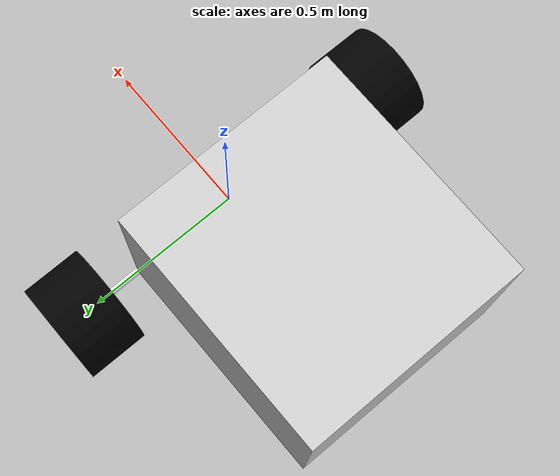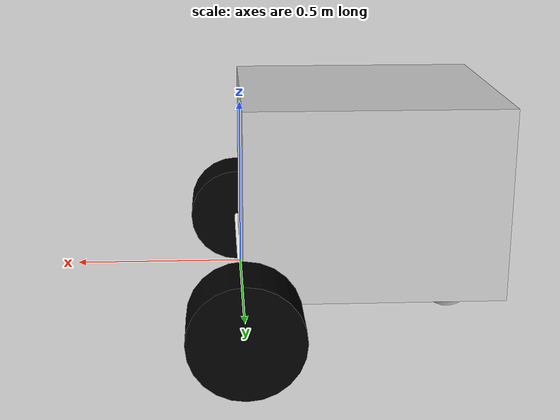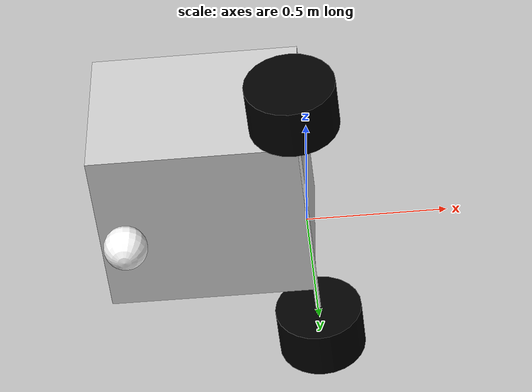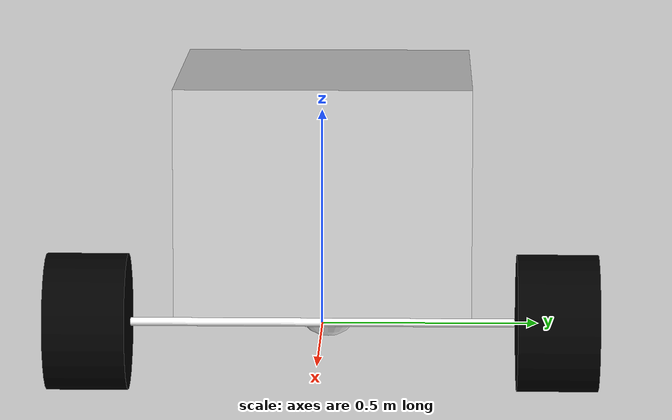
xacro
<?xml version="1.0"?>
<robot xmlns:xacro="http://www.ros.org/wiki/xacro" >

    <xacro:include filename="inertial_macros.xacro"/>

    <xacro:property name="chassis_length" value="0.750"/>
    <xacro:property name="chassis_width" value="0.696"/>
    <xacro:property name="chassis_height" value="0.556"/>
    <xacro:property name="chassis_mass" value="3.0"/>
    <xacro:property name="wheel_radius" value="0.16"/>
    <xacro:property name="wheel_thickness" value="0.19"/>
    <xacro:property name="wheel_mass" value="1.0"/>
    <xacro:property name="wheel_offset_x" value="0.226"/>
    <xacro:property name="wheel_offset_y" value="${chassis_width/2 + wheel_thickness + 0.01}"/>
    <xacro:property name="wheel_offset_z" value="0.01"/>
    <xacro:property name="caster_wheel_radius" value="0.01"/>
    <xacro:property name="caster_wheel_mass" value="0.2"/>
    <xacro:property name="caster_wheel_offset_x" value="0.075"/>
    <xacro:property name="caster_wheel_offset_z" value="${wheel_offset_z - wheel_radius + caster_wheel_radius}"/>

    <material name="white">
        <color rgba="1 1 1 1" />
    </material>

    <material name="orange">
        <color rgba="1 0.3 0.1 1"/>
    </material>

    <material name="blue">
        <color rgba="0.2 0.2 1 1"/>
    </material>

    <material name="black">
        <color rgba="0 0 0 1"/>
    </material>

    <material name="red">
        <color rgba="1 0 0 1"/>
    </material>

    <material name="grey">
        <color rgba="0.5 0.5 0.5 1.0"/>
    </material>

     <material name="lightgrey">
         <color rgba="0.8 0.8 0.8 1.0"/>
    </material>

    <material name="greynavy">
        <color rgba="0.25 0.25 0.375 1.0"/>
    </material>

    <!-- BASE LINK -->

    <link name="base_link">

    </link>

    <!-- BASE_FOOTPRINT LINK -->

    <joint name="base_footprint_joint" type="fixed">
        <parent link="base_link"/>
        <child link="base_footprint"/>
        <origin xyz="0 0 0" rpy="0 0 0"/>
    </joint>

    <link name="base_footprint">
    </link>

    <!-- CHASSIS LINK -->

    <joint name="chassis_joint" type="fixed">
        <parent link="base_link"/>
        <child link="chassis"/>
        <origin xyz="0 0 ${-wheel_offset_z}"/>
    </joint>

    <link name="chassis">
        <visual>
            <origin xyz="${-chassis_length/2} 0 ${chassis_height/2}"/>
            <geometry>
                <box size="${chassis_length} ${chassis_width} ${chassis_height}"/>
            </geometry>
            <material name="lightgrey"/>
        </visual>
        <collision>
            <origin xyz="${-chassis_length/2} 0 ${chassis_height/2}"/>
            <geometry>
                <box size="${chassis_length} ${chassis_width} ${chassis_height}"/>
            </geometry>
        </collision>
        <xacro:inertial_box mass="${chassis_mass}" x="${chassis_length}" y="${chassis_width}" z="${chassis_height}">
            <origin xyz="${-chassis_length/2} 0 ${chassis_height/2}" rpy="0 0 0"/>
        </xacro:inertial_box>
    </link>

    <gazebo reference="chassis">
        <material>Gazebo/LightGrey</material>
    </gazebo>

    <!-- LEFT WHEEL LINK -->

    <joint name="left_wheel_joint" type="continuous">
        <parent link="base_link"/>
        <child link="left_wheel"/>
        <origin xyz="0 ${wheel_offset_y} 0" rpy="-${pi/2} 0 0" />
        <axis xyz="0 0 1"/>
        <dynamics damping="0.2"/>
    </joint>

    <link name="left_wheel">
        <visual>
            <geometry>
                <cylinder radius="${wheel_radius}" length="${wheel_thickness}"/>
            </geometry>
            <material name="black"/>
        </visual>
        <collision>
            <geometry>
                <sphere radius="${wheel_radius}"/>
            </geometry>
            <surface>
                <friction>
                <ode>
                    <mu>10000.0</mu>
                    <mu2>10000.0</mu2>
                </ode>
                </friction>
                <contact>
                <ode>
                    <min_depth>0.003</min_depth>
                </ode>
                </contact>
            </surface>
        </collision>
        <xacro:inertial_cylinder mass="${wheel_mass}" length="${wheel_thickness}" radius="${wheel_radius}">
            <origin xyz="0 0 0" rpy="0 0 0"/>
        </xacro:inertial_cylinder>
    </link>

    <gazebo reference="left_wheel">
        <material>Gazebo/Black</material>
    </gazebo>

    <!-- RIGHT WHEEL LINK -->

    <joint name="right_wheel_joint" type="continuous">
        <parent link="base_link"/>
        <child link="right_wheel"/>
        <origin xyz="0 -${wheel_offset_y} 0" rpy="${pi/2} 0 0" />
        <axis xyz="0 0 -1"/>
    </joint>

    <link name="right_wheel">
        <visual>
            <geometry>
                <cylinder radius="${wheel_radius}" length="${wheel_thickness}"/>
            </geometry>
            <material name="black"/>
        </visual>
        <collision>
            <geometry>
                <sphere radius="${wheel_radius}"/>
            </geometry>
            <surface>
                <friction>
                <ode>
                    <mu>10000.0</mu>
                    <mu2>10000.0</mu2>
                </ode>
                </friction>
                <contact>
                <ode>
                    <min_depth>0.003</min_depth>
                </ode>
                </contact>
            </surface>
        </collision>
        <xacro:inertial_cylinder mass="${wheel_mass}" length="${wheel_thickness}" radius="${wheel_radius}">
            <origin xyz="0 0 0" rpy="0 0 0"/>
        </xacro:inertial_cylinder>
    </link>

    <gazebo reference="right_wheel">
        <material>Gazebo/Black</material>
    </gazebo>

    <joint name="wheel_joint" type="fixed">
        <parent link="base_link"/>
        <child link="wheel_bar"/>
        <origin xyz="0 0 0" rpy="${pi/2} 0 0" />
        <axis xyz="0 0 -1"/>
    </joint>

    <link name="wheel_bar">
        <visual>
            <geometry>
                <cylinder radius="0.01" length="${chassis_width + wheel_thickness + 0.01}"/>
            </geometry>
            <material name="white"/>
        </visual>
        <collision>
            <geometry>
                <cylinder radius="0.01" length="${chassis_width + wheel_thickness + 0.01}"/>
            </geometry>
        </collision>
    </link>

    <gazebo reference="wheel_bar">
        <material>Gazebo/white</material>
    </gazebo>

    <!-- CASTER WHEEL LINK -->

    <joint name="caster_wheel_joint" type="fixed">
        <parent link="chassis"/>
        <child link="caster_wheel"/>
        <origin xyz="${-chassis_length + 0.1} 0 ${-wheel_radius/2 + 0.01}"/>
    </joint>

    <link name="caster_wheel">
        <visual>
            <geometry>
                <sphere radius="${wheel_radius/2}"/>
            </geometry>
            <material name="white"/>
        </visual>
        <collision>
            <geometry>
                <sphere radius="${wheel_radius/2}"/>
            </geometry>
        </collision>
        <xacro:inertial_sphere mass="${caster_wheel_mass}" radius="${wheel_radius/2}">
            <origin xyz="0 0 0" rpy="0 0 0"/>
        </xacro:inertial_sphere>
    </link>

</robot>
